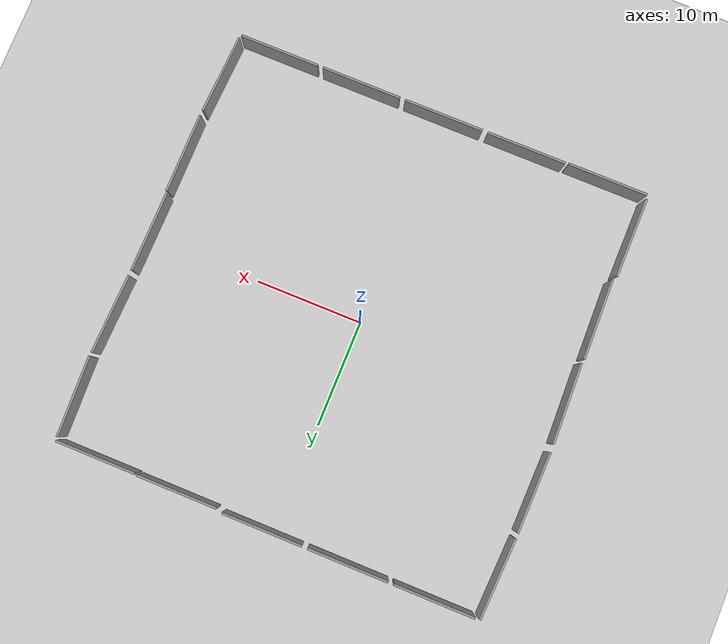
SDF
<sdf version="1.4">
 <world name="default">
  <light name="sun" type="directional">
   <pose>0 0 10 0 -0 0</pose>
   <diffuse>0.8 0.8 0.8 1</diffuse>
   <specular>0.2 0.2 0.2 1</specular>
   <attenuation>
    <range>1000</range>
    <constant>0.9</constant>
    <linear>0.01</linear>
    <quadratic>0.001</quadratic>
   </attenuation>
   <direction>-0.5 0.1 -0.9</direction>
  </light>
  <model name="ground_plane">
   <static>1</static>
   <link name="link">
    <collision name="collision">
     <geometry><plane><normal>0 0 1</normal><size>100 100</size></plane></geometry>
     <surface><friction><ode><mu>100</mu><mu2>50</mu2></ode></friction></surface>
    </collision>
    <visual name="visual">
     <cast_shadows>0</cast_shadows>
     <geometry><plane><normal>0 0 1</normal><size>100 100</size></plane></geometry>
     <material>
      <script><uri>file://media/materials/scripts/gazebo.material</uri><name>Gazebo/Grey</name></script>
     </material>
    </visual>
    <velocity_decay><linear>0</linear><angular>0</angular></velocity_decay>
   </link>
  </model>
  <physics type="ode">
   <max_step_size>0.001</max_step_size>
   <real_time_factor>1</real_time_factor>
   <real_time_update_rate>1000</real_time_update_rate>
   <gravity>0 0 -9.8</gravity>
  </physics>
  <scene><ambient>0.4 0.4 0.4 1</ambient><background>0.7 0.7 0.7 1</background><shadows>1</shadows></scene>
  <spherical_coordinates>
   <surface_model>EARTH_WGS84</surface_model>
   <latitude_deg>0</latitude_deg>
   <longitude_deg>0</longitude_deg>
   <elevation>0</elevation>
   <heading_deg>0</heading_deg>
  </spherical_coordinates>
  <model name="grey_wall_0">
   <static>1</static>
   <link name="link">
    <pose>0 0 1.4 0 -0 0</pose>
    <collision name="collision"><geometry><box><size>7.5 0.2 2.8</size></box></geometry></collision>
    <visual name="visual">
     <cast_shadows>0</cast_shadows>
     <geometry><box><size>7.5 0.2 2.8</size></box></geometry>
     <material>
      <script>
       <uri>model://grey_wall/materials/scripts</uri>
       <uri>model://grey_wall/materials/textures</uri>
       <name>vrc/grey_wall</name>
      </script>
     </material>
    </visual>
    <velocity_decay><linear>0</linear><angular>0</angular></velocity_decay>
   </link>
   <pose>-8 -20 0 0 -0 0</pose>
  </model>
  <model name="grey_wall_1">
   <static>1</static>
   <link name="link">
    <pose>0 0 1.4 0 -0 0</pose>
    <collision name="collision"><geometry><box><size>7.5 0.2 2.8</size></box></geometry></collision>
    <visual name="visual">
     <cast_shadows>0</cast_shadows>
     <geometry><box><size>7.5 0.2 2.8</size></box></geometry>
     <material>
      <script>
       <uri>model://grey_wall/materials/scripts</uri>
       <uri>model://grey_wall/materials/textures</uri>
       <name>vrc/grey_wall</name>
      </script>
     </material>
    </visual>
    <velocity_decay><linear>0</linear><angular>0</angular></velocity_decay>
   </link>
   <pose>0 -20 0 0 -0 0</pose>
  </model>
  <model name="grey_wall_2">
   <static>1</static>
   <link name="link">
    <pose>0 0 1.4 0 -0 0</pose>
    <collision name="collision"><geometry><box><size>7.5 0.2 2.8</size></box></geometry></collision>
    <visual name="visual">
     <cast_shadows>0</cast_shadows>
     <geometry><box><size>7.5 0.2 2.8</size></box></geometry>
     <material>
      <script>
       <uri>model://grey_wall/materials/scripts</uri>
       <uri>model://grey_wall/materials/textures</uri>
       <name>vrc/grey_wall</name>
      </script>
     </material>
    </visual>
    <velocity_decay><linear>0</linear><angular>0</angular></velocity_decay>
   </link>
   <pose>8 -20 0 0 -0 0</pose>
  </model>
  <model name="grey_wall_3">
   <static>1</static>
   <link name="link">
    <pose>0 0 1.4 0 -0 0</pose>
    <collision name="collision"><geometry><box><size>7.5 0.2 2.8</size></box></geometry></collision>
    <visual name="visual">
     <cast_shadows>0</cast_shadows>
     <geometry><box><size>7.5 0.2 2.8</size></box></geometry>
     <material>
      <script>
       <uri>model://grey_wall/materials/scripts</uri>
       <uri>model://grey_wall/materials/textures</uri>
       <name>vrc/grey_wall</name>
      </script>
     </material>
    </visual>
    <velocity_decay><linear>0</linear><angular>0</angular></velocity_decay>
   </link>
   <pose>16 -20 0 0 -0 0</pose>
  </model>
  <model name="grey_wall_4">
   <static>1</static>
   <link name="link">
    <pose>0 0 1.4 0 -0 0</pose>
    <collision name="collision"><geometry><box><size>7.5 0.2 2.8</size></box></geometry></collision>
    <visual name="visual">
     <cast_shadows>0</cast_shadows>
     <geometry><box><size>7.5 0.2 2.8</size></box></geometry>
     <material>
      <script>
       <uri>model://grey_wall/materials/scripts</uri>
       <uri>model://grey_wall/materials/textures</uri>
       <name>vrc/grey_wall</name>
      </script>
     </material>
    </visual>
    <velocity_decay><linear>0</linear><angular>0</angular></velocity_decay>
   </link>
   <pose>20.0512 -15.961 0 0 -0 1.51812</pose>
  </model>
  <model name="grey_wall_5">
   <static>1</static>
   <link name="link">
    <pose>0 0 1.4 0 -0 0</pose>
    <collision name="collision"><geometry><box><size>7.5 0.2 2.8</size></box></geometry></collision>
    <visual name="visual">
     <cast_shadows>0</cast_shadows>
     <geometry><box><size>7.5 0.2 2.8</size></box></geometry>
     <material>
      <script>
       <uri>model://grey_wall/materials/scripts</uri>
       <uri>model://grey_wall/materials/textures</uri>
       <name>vrc/grey_wall</name>
      </script>
     </material>
    </visual>
    <velocity_decay><linear>0</linear><angular>0</angular></velocity_decay>
   </link>
   <pose>20.3305 -7.96983 0 0 0 -1.58003</pose>
  </model>
  <model name="grey_wall_6">
   <static>1</static>
   <link name="link">
    <pose>0 0 1.4 0 -0 0</pose>
    <collision name="collision"><geometry><box><size>7.5 0.2 2.8</size></box></geometry></collision>
    <visual name="visual">
     <cast_shadows>0</cast_shadows>
     <geometry><box><size>7.5 0.2 2.8</size></box></geometry>
     <material>
      <script>
       <uri>model://grey_wall/materials/scripts</uri>
       <uri>model://grey_wall/materials/textures</uri>
       <name>vrc/grey_wall</name>
      </script>
     </material>
    </visual>
    <velocity_decay><linear>0</linear><angular>0</angular></velocity_decay>
   </link>
   <pose>20.3282 -0.207977 0 0 0 -1.58921</pose>
  </model>
  <model name="grey_wall_7">
   <static>1</static>
   <link name="link">
    <pose>0 0 1.4 0 -0 0</pose>
    <collision name="collision"><geometry><box><size>7.5 0.2 2.8</size></box></geometry></collision>
    <visual name="visual">
     <cast_shadows>0</cast_shadows>
     <geometry><box><size>7.5 0.2 2.8</size></box></geometry>
     <material>
      <script>
       <uri>model://grey_wall/materials/scripts</uri>
       <uri>model://grey_wall/materials/textures</uri>
       <name>vrc/grey_wall</name>
      </script>
     </material>
    </visual>
    <velocity_decay><linear>0</linear><angular>0</angular></velocity_decay>
   </link>
   <pose>20.5733 7.78994 0 0 0 -1.60983</pose>
  </model>
  <model name="grey_wall_8">
   <static>1</static>
   <link name="link">
    <pose>0 0 1.4 0 -0 0</pose>
    <collision name="collision"><geometry><box><size>7.5 0.2 2.8</size></box></geometry></collision>
    <visual name="visual">
     <cast_shadows>0</cast_shadows>
     <geometry><box><size>7.5 0.2 2.8</size></box></geometry>
     <material>
      <script>
       <uri>model://grey_wall/materials/scripts</uri>
       <uri>model://grey_wall/materials/textures</uri>
       <name>vrc/grey_wall</name>
      </script>
     </material>
    </visual>
    <velocity_decay><linear>0</linear><angular>0</angular></velocity_decay>
   </link>
   <pose>20.657 15.6379 0 0 0 -1.54097</pose>
  </model>
  <model name="grey_wall_9">
   <static>1</static>
   <link name="link">
    <pose>0 0 1.4 0 -0 0</pose>
    <collision name="collision"><geometry><box><size>7.5 0.2 2.8</size></box></geometry></collision>
    <visual name="visual">
     <cast_shadows>0</cast_shadows>
     <geometry><box><size>7.5 0.2 2.8</size></box></geometry>
     <material>
      <script>
       <uri>model://grey_wall/materials/scripts</uri>
       <uri>model://grey_wall/materials/textures</uri>
       <name>vrc/grey_wall</name>
      </script>
     </material>
    </visual>
    <velocity_decay><linear>0</linear><angular>0</angular></velocity_decay>
   </link>
   <pose>16.7543 19.7452 0 0 -0 0</pose>
  </model>
  <model name="grey_wall_10">
   <static>1</static>
   <link name="link">
    <pose>0 0 1.4 0 -0 0</pose>
    <collision name="collision"><geometry><box><size>7.5 0.2 2.8</size></box></geometry></collision>
    <visual name="visual">
     <cast_shadows>0</cast_shadows>
     <geometry><box><size>7.5 0.2 2.8</size></box></geometry>
     <material>
      <script>
       <uri>model://grey_wall/materials/scripts</uri>
       <uri>model://grey_wall/materials/textures</uri>
       <name>vrc/grey_wall</name>
      </script>
     </material>
    </visual>
    <velocity_decay><linear>0</linear><angular>0</angular></velocity_decay>
   </link>
   <pose>9.0793 19.8115 0 0 -0 0</pose>
  </model>
  <model name="grey_wall_11">
   <static>1</static>
   <link name="link">
    <pose>0 0 1.4 0 -0 0</pose>
    <collision name="collision"><geometry><box><size>7.5 0.2 2.8</size></box></geometry></collision>
    <visual name="visual">
     <cast_shadows>0</cast_shadows>
     <geometry><box><size>7.5 0.2 2.8</size></box></geometry>
     <material>
      <script>
       <uri>model://grey_wall/materials/scripts</uri>
       <uri>model://grey_wall/materials/textures</uri>
       <name>vrc/grey_wall</name>
      </script>
     </material>
    </visual>
    <velocity_decay><linear>0</linear><angular>0</angular></velocity_decay>
   </link>
   <pose>-15.7593 -20.0545 0 0 -0 0</pose>
  </model>
  <model name="grey_wall_12">
   <static>1</static>
   <link name="link">
    <pose>0 0 1.4 0 -0 0</pose>
    <collision name="collision"><geometry><box><size>7.5 0.2 2.8</size></box></geometry></collision>
    <visual name="visual">
     <cast_shadows>0</cast_shadows>
     <geometry><box><size>7.5 0.2 2.8</size></box></geometry>
     <material>
      <script>
       <uri>model://grey_wall/materials/scripts</uri>
       <uri>model://grey_wall/materials/textures</uri>
       <name>vrc/grey_wall</name>
      </script>
     </material>
    </visual>
    <velocity_decay><linear>0</linear><angular>0</angular></velocity_decay>
   </link>
   <pose>1 20 0 0 -0 0</pose>
  </model>
  <model name="grey_wall_13">
   <static>1</static>
   <link name="link">
    <pose>0 0 1.4 0 -0 0</pose>
    <collision name="collision"><geometry><box><size>7.5 0.2 2.8</size></box></geometry></collision>
    <visual name="visual">
     <cast_shadows>0</cast_shadows>
     <geometry><box><size>7.5 0.2 2.8</size></box></geometry>
     <material>
      <script>
       <uri>model://grey_wall/materials/scripts</uri>
       <uri>model://grey_wall/materials/textures</uri>
       <name>vrc/grey_wall</name>
      </script>
     </material>
    </visual>
    <velocity_decay><linear>0</linear><angular>0</angular></velocity_decay>
   </link>
   <pose>-7 20 0 0 -0 0</pose>
  </model>
  <model name="grey_wall_14">
   <static>1</static>
   <link name="link">
    <pose>0 0 1.4 0 -0 0</pose>
    <collision name="collision"><geometry><box><size>7.5 0.2 2.8</size></box></geometry></collision>
    <visual name="visual">
     <cast_shadows>0</cast_shadows>
     <geometry><box><size>7.5 0.2 2.8</size></box></geometry>
     <material>
      <script>
       <uri>model://grey_wall/materials/scripts</uri>
       <uri>model://grey_wall/materials/textures</uri>
       <name>vrc/grey_wall</name>
      </script>
     </material>
    </visual>
    <velocity_decay><linear>0</linear><angular>0</angular></velocity_decay>
   </link>
   <pose>-15 20 0 0 -0 0</pose>
  </model>
  <model name="grey_wall_15">
   <static>1</static>
   <link name="link">
    <pose>0 0 1.4 0 -0 0</pose>
    <collision name="collision"><geometry><box><size>7.5 0.2 2.8</size></box></geometry></collision>
    <visual name="visual">
     <cast_shadows>0</cast_shadows>
     <geometry><box><size>7.5 0.2 2.8</size></box></geometry>
     <material>
      <script>
       <uri>model://grey_wall/materials/scripts</uri>
       <uri>model://grey_wall/materials/textures</uri>
       <name>vrc/grey_wall</name>
      </script>
     </material>
    </visual>
    <velocity_decay><linear>0</linear><angular>0</angular></velocity_decay>
   </link>
   <pose>-19.3341 16.2131 0 0 -0 1.5233</pose>
  </model>
  <model name="grey_wall_16">
   <static>1</static>
   <link name="link">
    <pose>0 0 1.4 0 -0 0</pose>
    <collision name="collision"><geometry><box><size>7.5 0.2 2.8</size></box></geometry></collision>
    <visual name="visual">
     <cast_shadows>0</cast_shadows>
     <geometry><box><size>7.5 0.2 2.8</size></box></geometry>
     <material>
      <script>
       <uri>model://grey_wall/materials/scripts</uri>
       <uri>model://grey_wall/materials/textures</uri>
       <name>vrc/grey_wall</name>
      </script>
     </material>
    </visual>
    <velocity_decay><linear>0</linear><angular>0</angular></velocity_decay>
   </link>
   <pose>-19.586 8.23184 0 0 -0 1.55286</pose>
  </model>
  <model name="grey_wall_17">
   <static>1</static>
   <link name="link">
    <pose>0 0 1.4 0 -0 0</pose>
    <collision name="collision"><geometry><box><size>7.5 0.2 2.8</size></box></geometry></collision>
    <visual name="visual">
     <cast_shadows>0</cast_shadows>
     <geometry><box><size>7.5 0.2 2.8</size></box></geometry>
     <material>
      <script>
       <uri>model://grey_wall/materials/scripts</uri>
       <uri>model://grey_wall/materials/textures</uri>
       <name>vrc/grey_wall</name>
      </script>
     </material>
    </visual>
    <velocity_decay><linear>0</linear><angular>0</angular></velocity_decay>
   </link>
   <pose>-19.5228 -0.024063 0 0 -0 1.60134</pose>
  </model>
  <model name="grey_wall_18">
   <static>1</static>
   <link name="link">
    <pose>0 0 1.4 0 -0 0</pose>
    <collision name="collision"><geometry><box><size>7.5 0.2 2.8</size></box></geometry></collision>
    <visual name="visual">
     <cast_shadows>0</cast_shadows>
     <geometry><box><size>7.5 0.2 2.8</size></box></geometry>
     <material>
      <script>
       <uri>model://grey_wall/materials/scripts</uri>
       <uri>model://grey_wall/materials/textures</uri>
       <name>vrc/grey_wall</name>
      </script>
     </material>
    </visual>
    <velocity_decay><linear>0</linear><angular>0</angular></velocity_decay>
   </link>
   <pose>-19.4165 -7.93328 0 0 -0 1.59429</pose>
  </model>
  <model name="grey_wall_19">
   <static>1</static>
   <link name="link">
    <pose>0 0 1.4 0 -0 0</pose>
    <collision name="collision"><geometry><box><size>7.5 0.2 2.8</size></box></geometry></collision>
    <visual name="visual">
     <cast_shadows>0</cast_shadows>
     <geometry><box><size>7.5 0.2 2.8</size></box></geometry>
     <material>
      <script>
       <uri>model://grey_wall/materials/scripts</uri>
       <uri>model://grey_wall/materials/textures</uri>
       <name>vrc/grey_wall</name>
      </script>
     </material>
    </visual>
    <velocity_decay><linear>0</linear><angular>0</angular></velocity_decay>
   </link>
   <pose>-19.5883 -15.9134 0 0 0 -1.57369</pose>
  </model>
 </world>
</sdf>
